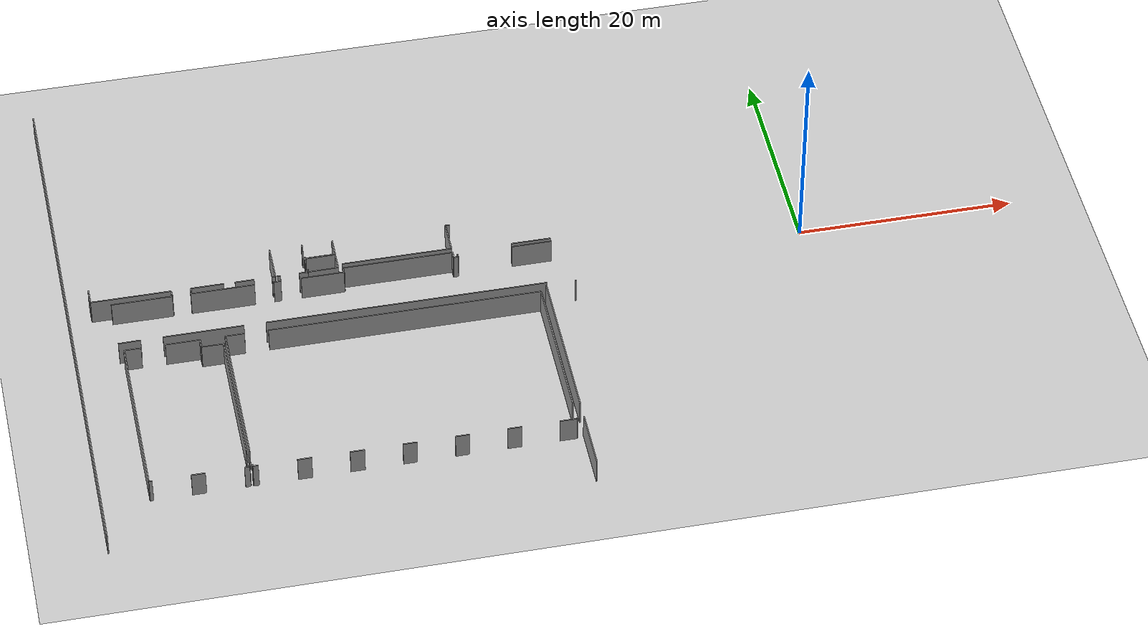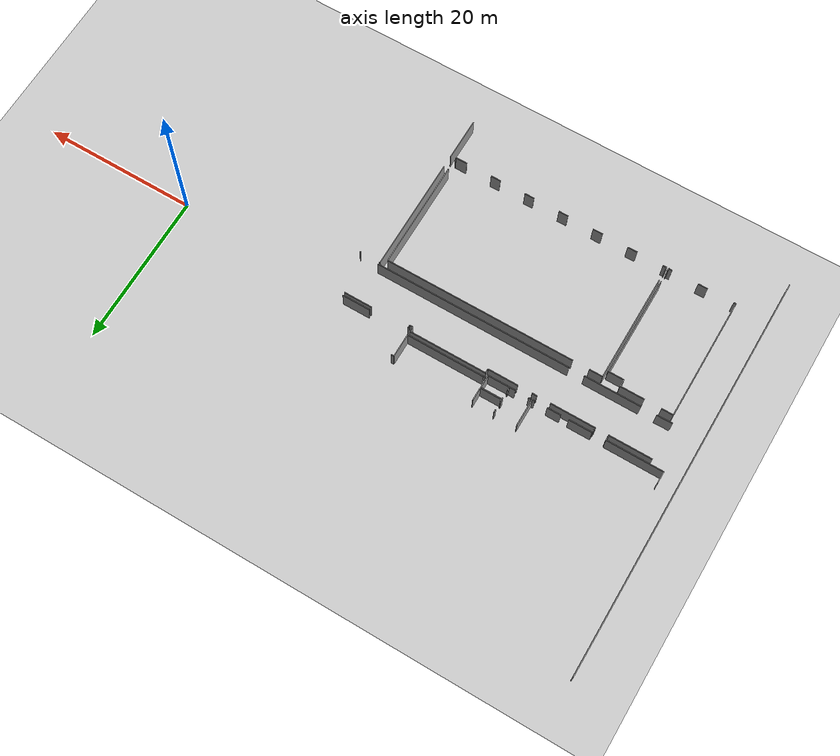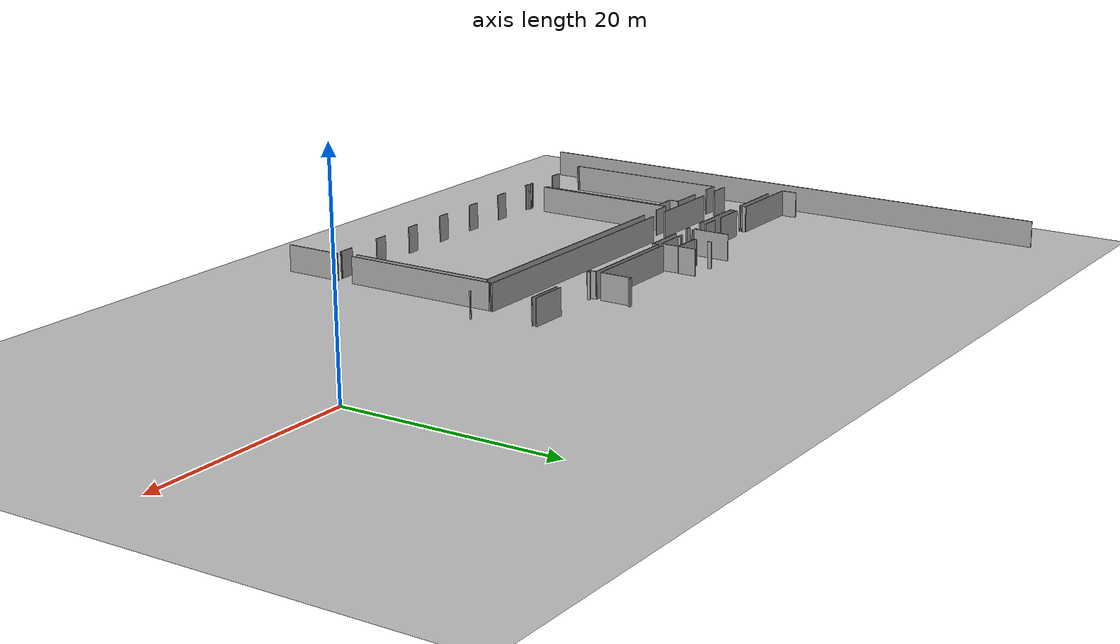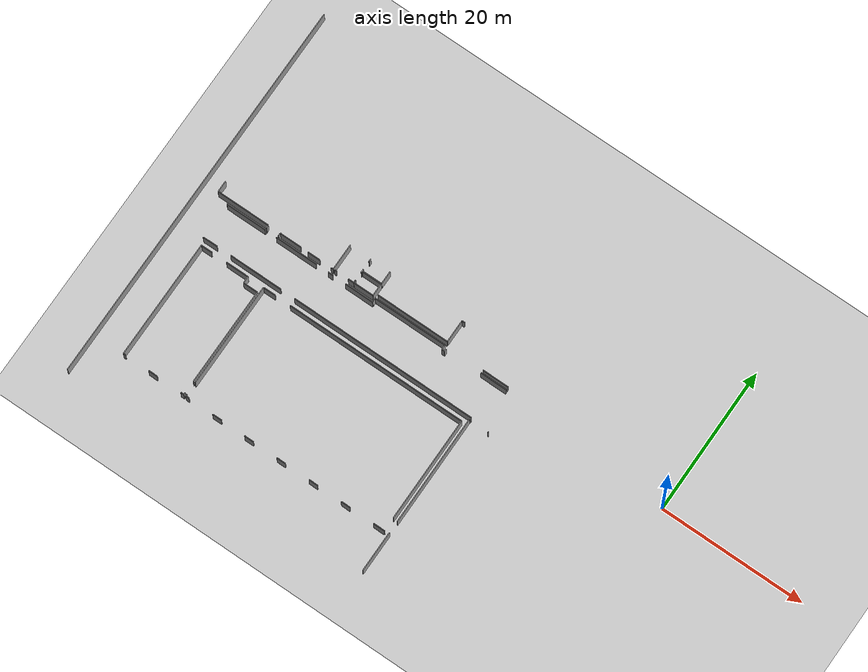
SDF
<sdf version="1.6">
 <world name="default">
  <model name="ground_plane">
   <static>1</static>
   <link name="link">
    <collision name="collision">
     <geometry><plane><normal>0 0 1</normal><size>100 100</size></plane></geometry>
     <surface><friction><ode><mu>100</mu><mu2>50</mu2></ode></friction></surface>
    </collision>
    <visual name="visual">
     <cast_shadows>0</cast_shadows>
     <geometry><plane><normal>0 0 1</normal><size>100 100</size></plane></geometry>
     <material>
      <script><uri>file://media/materials/scripts/gazebo.material</uri><name>Gazebo/Grey</name></script>
     </material>
    </visual>
   </link>
  </model>
  <model name="0510032192_A_40_1_103">
   <static>1</static>
   <link name="Wall_97">
    <collision name="Wall_97_Collision">
     <geometry><box><size>1.51347299684 0.1 2.5</size></box></geometry>
     <pose>0.756736498418 0 1.25 0 0 0</pose>
    </collision>
    <visual name="Wall_97_Visual">
     <pose>0.756736498418 0 1.25 0 0 0</pose>
     <geometry><box><size>1.51347299684 0.1 2.5</size></box></geometry>
     <material>
      <script><uri>file://media/materials/scripts/gazebo.material</uri><name>Gazebo/Grey</name></script>
      <ambient>1 1 1 1</ambient>
     </material>
    </visual>
    <pose>2.18019895062 -25.2887070751 0 0 0 1.57079632679</pose>
   </link>
   <link name="Wall_102">
    <collision name="Wall_102_Collision">
     <geometry><box><size>2.99315233824 0.1 2.5</size></box></geometry>
     <pose>1.49657616912 0 1.25 0 0 0</pose>
    </collision>
    <visual name="Wall_102_Visual">
     <pose>1.49657616912 0 1.25 0 0 0</pose>
     <geometry><box><size>2.99315233824 0.1 2.5</size></box></geometry>
     <material>
      <script><uri>file://media/materials/scripts/gazebo.material</uri><name>Gazebo/Grey</name></script>
      <ambient>1 1 1 1</ambient>
     </material>
    </visual>
    <pose>14.2558408395 -25.2934076963 0 0 0 3.14159265359</pose>
   </link>
   <link name="Wall_103">
    <collision name="Wall_103_Collision">
     <geometry><box><size>0.407429522442 0.1 2.5</size></box></geometry>
     <pose>0.203714761221 0 1.25 0 0 0</pose>
    </collision>
    <visual name="Wall_103_Visual">
     <pose>0.203714761221 0 1.25 0 0 0</pose>
     <geometry><box><size>0.407429522442 0.1 2.5</size></box></geometry>
     <material>
      <script><uri>file://media/materials/scripts/gazebo.material</uri><name>Gazebo/Grey</name></script>
      <ambient>1 1 1 1</ambient>
     </material>
    </visual>
    <pose>11.2626885013 -25.2934076963 0 0 0 -1.57079632679</pose>
   </link>
   <link name="Wall_104">
    <collision name="Wall_104_Collision">
     <geometry><box><size>0.0768615095346 0.1 2.5</size></box></geometry>
     <pose>0.0384307547673 0 1.25 0 0 0</pose>
    </collision>
    <visual name="Wall_104_Visual">
     <pose>0.0384307547673 0 1.25 0 0 0</pose>
     <geometry><box><size>0.0768615095346 0.1 2.5</size></box></geometry>
     <material>
      <script><uri>file://media/materials/scripts/gazebo.material</uri><name>Gazebo/Grey</name></script>
      <ambient>1 1 1 1</ambient>
     </material>
    </visual>
    <pose>11.2626885013 -25.7008372188 0 0 0 3.14159265359</pose>
   </link>
   <link name="Wall_105">
    <collision name="Wall_105_Collision">
     <geometry><box><size>0.0706363624814 0.1 2.5</size></box></geometry>
     <pose>0.0353181812407 0 1.25 0 0 0</pose>
    </collision>
    <visual name="Wall_105_Visual">
     <pose>0.0353181812407 0 1.25 0 0 0</pose>
     <geometry><box><size>0.0706363624814 0.1 2.5</size></box></geometry>
     <material>
      <script><uri>file://media/materials/scripts/gazebo.material</uri><name>Gazebo/Grey</name></script>
      <ambient>1 1 1 1</ambient>
     </material>
    </visual>
    <pose>9.55852273449 -25.7008372188 0 0 0 3.14159265359</pose>
   </link>
   <link name="Wall_106">
    <collision name="Wall_106_Collision">
     <geometry><box><size>0.406667259538 0.1 2.5</size></box></geometry>
     <pose>0.203333629769 0 1.25 0 0 0</pose>
    </collision>
    <visual name="Wall_106_Visual">
     <pose>0.203333629769 0 1.25 0 0 0</pose>
     <geometry><box><size>0.406667259538 0.1 2.5</size></box></geometry>
     <material>
      <script><uri>file://media/materials/scripts/gazebo.material</uri><name>Gazebo/Grey</name></script>
      <ambient>1 1 1 1</ambient>
     </material>
    </visual>
    <pose>9.48788637201 -25.7008372188 0 0 0 1.57079632679</pose>
   </link>
   <link name="Wall_107">
    <collision name="Wall_107_Collision">
     <geometry><box><size>7.30768946329 0.1 2.5</size></box></geometry>
     <pose>3.65384473164 0 1.25 0 0 0</pose>
    </collision>
    <visual name="Wall_107_Visual">
     <pose>3.65384473164 0 1.25 0 0 0</pose>
     <geometry><box><size>7.30768946329 0.1 2.5</size></box></geometry>
     <material>
      <script><uri>file://media/materials/scripts/gazebo.material</uri><name>Gazebo/Grey</name></script>
      <ambient>1 1 1 1</ambient>
     </material>
    </visual>
    <pose>9.48788637201 -25.2941699592 0 0 0 3.14084510066</pose>
   </link>
   <link name="Wall_136">
    <collision name="Wall_136_Collision">
     <geometry><box><size>10.0649193907 0.1 2.5</size></box></geometry>
     <pose>5.03245969535 0 1.25 0 0 0</pose>
    </collision>
    <visual name="Wall_136_Visual">
     <pose>5.03245969535 0 1.25 0 0 0</pose>
     <geometry><box><size>10.0649193907 0.1 2.5</size></box></geometry>
     <material>
      <script><uri>file://media/materials/scripts/gazebo.material</uri><name>Gazebo/Grey</name></script>
      <ambient>1 1 1 1</ambient>
     </material>
    </visual>
    <pose>25.1807198303 -24.8798800706 0 0 0 0.0</pose>
   </link>
   <link name="Wall_137">
    <collision name="Wall_137_Collision">
     <geometry><box><size>3.08309936097 0.1 2.5</size></box></geometry>
     <pose>1.54154968048 0 1.25 0 0 0</pose>
    </collision>
    <visual name="Wall_137_Visual">
     <pose>1.54154968048 0 1.25 0 0 0</pose>
     <geometry><box><size>3.08309936097 0.1 2.5</size></box></geometry>
     <material>
      <script><uri>file://media/materials/scripts/gazebo.material</uri><name>Gazebo/Grey</name></script>
      <ambient>1 1 1 1</ambient>
     </material>
    </visual>
    <pose>35.245639221 -24.8798800706 0 0 0 1.57079632679</pose>
   </link>
   <link name="Wall_138">
    <collision name="Wall_138_Collision">
     <geometry><box><size>0.384307547673 0.1 2.5</size></box></geometry>
     <pose>0.192153773837 0 1.25 0 0 0</pose>
    </collision>
    <visual name="Wall_138_Visual">
     <pose>0.192153773837 0 1.25 0 0 0</pose>
     <geometry><box><size>0.384307547673 0.1 2.5</size></box></geometry>
     <material>
      <script><uri>file://media/materials/scripts/gazebo.material</uri><name>Gazebo/Grey</name></script>
      <ambient>1 1 1 1</ambient>
     </material>
    </visual>
    <pose>35.245639221 -21.7967807097 0 0 0 0.0</pose>
   </link>
   <link name="Wall_140">
    <collision name="Wall_140_Collision">
     <geometry><box><size>3.61198277286 0.1 2.5</size></box></geometry>
     <pose>1.80599138643 0 1.25 0 0 0</pose>
    </collision>
    <visual name="Wall_140_Visual">
     <pose>1.80599138643 0 1.25 0 0 0</pose>
     <geometry><box><size>3.61198277286 0.1 2.5</size></box></geometry>
     <material>
      <script><uri>file://media/materials/scripts/gazebo.material</uri><name>Gazebo/Grey</name></script>
      <ambient>1 1 1 1</ambient>
     </material>
    </visual>
    <pose>40.7116994651 -25.3327912797 0 0 0 0.0</pose>
   </link>
   <link name="Wall_366">
    <collision name="Wall_366_Collision">
     <geometry><box><size>5.58484621346 0.1 2.5</size></box></geometry>
     <pose>2.79242310673 0 1.25 0 0 0</pose>
    </collision>
    <visual name="Wall_366_Visual">
     <pose>2.79242310673 0 1.25 0 0 0</pose>
     <geometry><box><size>5.58484621346 0.1 2.5</size></box></geometry>
     <material>
      <script><uri>file://media/materials/scripts/gazebo.material</uri><name>Gazebo/Grey</name></script>
      <ambient>1 1 1 1</ambient>
     </material>
    </visual>
    <pose>3.94775958228 -25.9514946705 0 0 0 0.0</pose>
   </link>
   <link name="Wall_367">
    <collision name="Wall_367_Collision">
     <geometry><box><size>5.81466847916 0.1 2.5</size></box></geometry>
     <pose>2.90733423958 0 1.25 0 0 0</pose>
    </collision>
    <visual name="Wall_367_Visual">
     <pose>2.90733423958 0 1.25 0 0 0</pose>
     <geometry><box><size>5.81466847916 0.1 2.5</size></box></geometry>
     <material>
      <script><uri>file://media/materials/scripts/gazebo.material</uri><name>Gazebo/Grey</name></script>
      <ambient>1 1 1 1</ambient>
     </material>
    </visual>
    <pose>11.1506358543 -25.9514946705 0 0 0 0.0</pose>
   </link>
   <link name="Wall_368">
    <collision name="Wall_368_Collision">
     <geometry><box><size>0.605109702336 0.1 2.5</size></box></geometry>
     <pose>0.302554851168 0 1.25 0 0 0</pose>
    </collision>
    <visual name="Wall_368_Visual">
     <pose>0.302554851168 0 1.25 0 0 0</pose>
     <geometry><box><size>0.605109702336 0.1 2.5</size></box></geometry>
     <material>
      <script><uri>file://media/materials/scripts/gazebo.material</uri><name>Gazebo/Grey</name></script>
      <ambient>1 1 1 1</ambient>
     </material>
    </visual>
    <pose>18.7516674501 -25.9514946705 0 0 0 0.0</pose>
   </link>
   <link name="Wall_369">
    <collision name="Wall_369_Collision">
     <geometry><box><size>3.91523636502 0.1 2.5</size></box></geometry>
     <pose>1.95761818251 0 1.25 0 0 0</pose>
    </collision>
    <visual name="Wall_369_Visual">
     <pose>1.95761818251 0 1.25 0 0 0</pose>
     <geometry><box><size>3.91523636502 0.1 2.5</size></box></geometry>
     <material>
      <script><uri>file://media/materials/scripts/gazebo.material</uri><name>Gazebo/Grey</name></script>
      <ambient>1 1 1 1</ambient>
     </material>
    </visual>
    <pose>21.2408369647 -25.9514946705 0 0 0 0.0</pose>
   </link>
   <link name="Wall_370">
    <collision name="Wall_370_Collision">
     <geometry><box><size>0.563439330225 0.1 2.5</size></box></geometry>
     <pose>0.281719665112 0 1.25 0 0 0</pose>
    </collision>
    <visual name="Wall_370_Visual">
     <pose>0.281719665112 0 1.25 0 0 0</pose>
     <geometry><box><size>0.563439330225 0.1 2.5</size></box></geometry>
     <material>
      <script><uri>file://media/materials/scripts/gazebo.material</uri><name>Gazebo/Grey</name></script>
      <ambient>1 1 1 1</ambient>
     </material>
    </visual>
    <pose>25.1560733297 -25.9514946705 0 0 0 1.57079632679</pose>
   </link>
   <link name="Wall_371">
    <collision name="Wall_371_Collision">
     <geometry><box><size>10.0886765846 0.1 2.5</size></box></geometry>
     <pose>5.04433829228 0 1.25 0 0 0</pose>
    </collision>
    <visual name="Wall_371_Visual">
     <pose>5.04433829228 0 1.25 0 0 0</pose>
     <geometry><box><size>10.0886765846 0.1 2.5</size></box></geometry>
     <material>
      <script><uri>file://media/materials/scripts/gazebo.material</uri><name>Gazebo/Grey</name></script>
      <ambient>1 1 1 1</ambient>
     </material>
    </visual>
    <pose>25.1560733297 -25.3880553403 0 0 0 0.0</pose>
   </link>
   <link name="Wall_372">
    <collision name="Wall_372_Collision">
     <geometry><box><size>0.651861827144 0.1 2.5</size></box></geometry>
     <pose>0.325930913572 0 1.25 0 0 0</pose>
    </collision>
    <visual name="Wall_372_Visual">
     <pose>0.325930913572 0 1.25 0 0 0</pose>
     <geometry><box><size>0.651861827144 0.1 2.5</size></box></geometry>
     <material>
      <script><uri>file://media/materials/scripts/gazebo.material</uri><name>Gazebo/Grey</name></script>
      <ambient>1 1 1 1</ambient>
     </material>
    </visual>
    <pose>35.2447499142 -25.3880553403 0 0 0 -1.57079632679</pose>
   </link>
   <link name="Wall_373">
    <collision name="Wall_373_Collision">
     <geometry><box><size>0.408699960616 0.1 2.5</size></box></geometry>
     <pose>0.204349980308 0 1.25 0 0 0</pose>
    </collision>
    <visual name="Wall_373_Visual">
     <pose>0.204349980308 0 1.25 0 0 0</pose>
     <geometry><box><size>0.408699960616 0.1 2.5</size></box></geometry>
     <material>
      <script><uri>file://media/materials/scripts/gazebo.material</uri><name>Gazebo/Grey</name></script>
      <ambient>1 1 1 1</ambient>
     </material>
    </visual>
    <pose>35.2447499142 -26.0399171674 0 0 0 0.0</pose>
   </link>
   <link name="Wall_374">
    <collision name="Wall_374_Collision">
     <geometry><box><size>0.320404507515 0.1 2.5</size></box></geometry>
     <pose>0.160202253757 0 1.25 0 0 0</pose>
    </collision>
    <visual name="Wall_374_Visual">
     <pose>0.160202253757 0 1.25 0 0 0</pose>
     <geometry><box><size>0.320404507515 0.1 2.5</size></box></geometry>
     <material>
      <script><uri>file://media/materials/scripts/gazebo.material</uri><name>Gazebo/Grey</name></script>
      <ambient>1 1 1 1</ambient>
     </material>
    </visual>
    <pose>35.6534498749 -26.0399171674 0 0 0 1.57079632679</pose>
   </link>
   <link name="Wall_375">
    <collision name="Wall_375_Collision">
     <geometry><box><size>3.633453178 0.1 2.5</size></box></geometry>
     <pose>1.816726589 0 1.25 0 0 0</pose>
    </collision>
    <visual name="Wall_375_Visual">
     <pose>1.816726589 0 1.25 0 0 0</pose>
     <geometry><box><size>3.633453178 0.1 2.5</size></box></geometry>
     <material>
      <script><uri>file://media/materials/scripts/gazebo.material</uri><name>Gazebo/Grey</name></script>
      <ambient>1 1 1 1</ambient>
     </material>
    </visual>
    <pose>40.6982328205 -25.7195126599 0 0 0 0.0</pose>
   </link>
   <link name="Wall_380">
    <collision name="Wall_380_Collision">
     <geometry><box><size>5.51852934077 0.1 2.5</size></box></geometry>
     <pose>2.75926467038 0 1.25 0 0 0</pose>
    </collision>
    <visual name="Wall_380_Visual">
     <pose>2.75926467038 0 1.25 0 0 0</pose>
     <geometry><box><size>5.51852934077 0.1 2.5</size></box></geometry>
     <material>
      <script><uri>file://media/materials/scripts/gazebo.material</uri><name>Gazebo/Grey</name></script>
      <ambient>1 1 1 1</ambient>
     </material>
    </visual>
    <pose>3.96986520651 -25.9570845985 0 0 0 0.0</pose>
   </link>
   <link name="Wall_381">
    <collision name="Wall_381_Collision">
     <geometry><box><size>5.81149238372 0.1 2.5</size></box></geometry>
     <pose>2.90574619186 0 1.25 0 0 0</pose>
    </collision>
    <visual name="Wall_381_Visual">
     <pose>2.90574619186 0 1.25 0 0 0</pose>
     <geometry><box><size>5.81149238372 0.1 2.5</size></box></geometry>
     <material>
      <script><uri>file://media/materials/scripts/gazebo.material</uri><name>Gazebo/Grey</name></script>
      <ambient>1 1 1 1</ambient>
     </material>
    </visual>
    <pose>11.1616886664 -25.9570845985 0 0 0 0.0</pose>
   </link>
   <link name="Wall_382">
    <collision name="Wall_382_Collision">
     <geometry><box><size>0.659103324737 0.1 2.5</size></box></geometry>
     <pose>0.329551662368 0 1.25 0 0 0</pose>
    </collision>
    <visual name="Wall_382_Visual">
     <pose>0.329551662368 0 1.25 0 0 0</pose>
     <geometry><box><size>0.659103324737 0.1 2.5</size></box></geometry>
     <material>
      <script><uri>file://media/materials/scripts/gazebo.material</uri><name>Gazebo/Grey</name></script>
      <ambient>1 1 1 1</ambient>
     </material>
    </visual>
    <pose>18.7229555474 -25.9570845985 0 0 0 0.0</pose>
   </link>
   <link name="Wall_383">
    <collision name="Wall_383_Collision">
     <geometry><box><size>3.92971936021 0.1 2.5</size></box></geometry>
     <pose>1.9648596801 0 1.25 0 0 0</pose>
    </collision>
    <visual name="Wall_383_Visual">
     <pose>1.9648596801 0 1.25 0 0 0</pose>
     <geometry><box><size>3.92971936021 0.1 2.5</size></box></geometry>
     <material>
      <script><uri>file://media/materials/scripts/gazebo.material</uri><name>Gazebo/Grey</name></script>
      <ambient>1 1 1 1</ambient>
     </material>
    </visual>
    <pose>21.2335954671 -25.9570845985 0 0 0 0.0</pose>
   </link>
   <link name="Wall_384">
    <collision name="Wall_384_Collision">
     <geometry><box><size>0.566488381843 0.1 2.5</size></box></geometry>
     <pose>0.283244190921 0 1.25 0 0 0</pose>
    </collision>
    <visual name="Wall_384_Visual">
     <pose>0.283244190921 0 1.25 0 0 0</pose>
     <geometry><box><size>0.566488381843 0.1 2.5</size></box></geometry>
     <material>
      <script><uri>file://media/materials/scripts/gazebo.material</uri><name>Gazebo/Grey</name></script>
      <ambient>1 1 1 1</ambient>
     </material>
    </visual>
    <pose>25.1633148273 -25.9570845985 0 0 0 1.57079632679</pose>
   </link>
   <link name="Wall_385">
    <collision name="Wall_385_Collision">
     <geometry><box><size>10.0630137334 0.1 2.5</size></box></geometry>
     <pose>5.03150686672 0 1.25 0 0 0</pose>
    </collision>
    <visual name="Wall_385_Visual">
     <pose>5.03150686672 0 1.25 0 0 0</pose>
     <geometry><box><size>10.0630137334 0.1 2.5</size></box></geometry>
     <material>
      <script><uri>file://media/materials/scripts/gazebo.material</uri><name>Gazebo/Grey</name></script>
      <ambient>1 1 1 1</ambient>
     </material>
    </visual>
    <pose>25.1633148273 -25.3905962166 0 0 0 0.0</pose>
   </link>
   <link name="Wall_386">
    <collision name="Wall_386_Collision">
     <geometry><box><size>0.645255548639 0.1 2.5</size></box></geometry>
     <pose>0.322627774319 0 1.25 0 0 0</pose>
    </collision>
    <visual name="Wall_386_Visual">
     <pose>0.322627774319 0 1.25 0 0 0</pose>
     <geometry><box><size>0.645255548639 0.1 2.5</size></box></geometry>
     <material>
      <script><uri>file://media/materials/scripts/gazebo.material</uri><name>Gazebo/Grey</name></script>
      <ambient>1 1 1 1</ambient>
     </material>
    </visual>
    <pose>35.2263285607 -25.3905962166 0 0 0 -1.57079632679</pose>
   </link>
   <link name="Wall_387">
    <collision name="Wall_387_Collision">
     <geometry><box><size>0.428391752315 0.1 2.5</size></box></geometry>
     <pose>0.214195876158 0 1.25 0 0 0</pose>
    </collision>
    <visual name="Wall_387_Visual">
     <pose>0.214195876158 0 1.25 0 0 0</pose>
     <geometry><box><size>0.428391752315 0.1 2.5</size></box></geometry>
     <material>
      <script><uri>file://media/materials/scripts/gazebo.material</uri><name>Gazebo/Grey</name></script>
      <ambient>1 1 1 1</ambient>
     </material>
    </visual>
    <pose>35.2263285607 -26.0358517653 0 0 0 0.0</pose>
   </link>
   <link name="Wall_388">
    <collision name="Wall_388_Collision">
     <geometry><box><size>0.313035966105 0.1 2.5</size></box></geometry>
     <pose>0.156517983052 0 1.25 0 0 0</pose>
    </collision>
    <visual name="Wall_388_Visual">
     <pose>0.156517983052 0 1.25 0 0 0</pose>
     <geometry><box><size>0.313035966105 0.1 2.5</size></box></geometry>
     <material>
      <script><uri>file://media/materials/scripts/gazebo.material</uri><name>Gazebo/Grey</name></script>
      <ambient>1 1 1 1</ambient>
     </material>
    </visual>
    <pose>35.654720313 -26.0358517653 0 0 0 1.57079632679</pose>
   </link>
   <link name="Wall_389">
    <collision name="Wall_389_Collision">
     <geometry><box><size>3.65073113717 0.1 2.5</size></box></geometry>
     <pose>1.82536556858 0 1.25 0 0 0</pose>
    </collision>
    <visual name="Wall_389_Visual">
     <pose>1.82536556858 0 1.25 0 0 0</pose>
     <geometry><box><size>3.65073113717 0.1 2.5</size></box></geometry>
     <material>
      <script><uri>file://media/materials/scripts/gazebo.material</uri><name>Gazebo/Grey</name></script>
      <ambient>1 1 1 1</ambient>
     </material>
    </visual>
    <pose>40.6847661759 -25.7228157992 0 0 0 0.0</pose>
   </link>
   <link name="Wall_394">
    <collision name="Wall_394_Collision">
     <geometry><box><size>25.6303279001 0.1 2.5</size></box></geometry>
     <pose>12.81516395 0 1.25 0 0 0</pose>
    </collision>
    <visual name="Wall_394_Visual">
     <pose>12.81516395 0 1.25 0 0 0</pose>
     <geometry><box><size>25.6303279001 0.1 2.5</size></box></geometry>
     <material>
      <script><uri>file://media/materials/scripts/gazebo.material</uri><name>Gazebo/Grey</name></script>
      <ambient>1 1 1 1</ambient>
     </material>
    </visual>
    <pose>42.88338648 -30.8891796781 0 0 0 3.14159265359</pose>
   </link>
   <link name="Wall_395">
    <collision name="Wall_395_Collision">
     <geometry><box><size>7.30501950123 0.1 2.5</size></box></geometry>
     <pose>3.65250975061 0 1.25 0 0 0</pose>
    </collision>
    <visual name="Wall_395_Visual">
     <pose>3.65250975061 0 1.25 0 0 0</pose>
     <geometry><box><size>7.30501950123 0.1 2.5</size></box></geometry>
     <material>
      <script><uri>file://media/materials/scripts/gazebo.material</uri><name>Gazebo/Grey</name></script>
      <ambient>1 1 1 1</ambient>
     </material>
    </visual>
    <pose>15.2640605745 -30.8891796781 0 0 0 3.14159265359</pose>
   </link>
   <link name="Wall_396">
    <collision name="Wall_396_Collision">
     <geometry><box><size>2.01811567243 0.1 2.5</size></box></geometry>
     <pose>1.00905783622 0 1.25 0 0 0</pose>
    </collision>
    <visual name="Wall_396_Visual">
     <pose>1.00905783622 0 1.25 0 0 0</pose>
     <geometry><box><size>2.01811567243 0.1 2.5</size></box></geometry>
     <material>
      <script><uri>file://media/materials/scripts/gazebo.material</uri><name>Gazebo/Grey</name></script>
      <ambient>1 1 1 1</ambient>
     </material>
    </visual>
    <pose>5.96559653424 -30.8891796781 0 0 0 -3.124972639</pose>
   </link>
   <link name="Wall_397">
    <collision name="Wall_397_Collision">
     <geometry><box><size>1.75422103083 0.1 2.5</size></box></geometry>
     <pose>0.877110515417 0 1.25 0 0 0</pose>
    </collision>
    <visual name="Wall_397_Visual">
     <pose>0.877110515417 0 1.25 0 0 0</pose>
     <geometry><box><size>1.75422103083 0.1 2.5</size></box></geometry>
     <material>
      <script><uri>file://media/materials/scripts/gazebo.material</uri><name>Gazebo/Grey</name></script>
      <ambient>1 1 1 1</ambient>
     </material>
    </visual>
    <pose>15.292899521 -25.3056039028 0 0 0 0.0</pose>
   </link>
   <link name="Wall_398">
    <collision name="Wall_398_Collision">
     <geometry><box><size>0.317355455897 0.1 2.5</size></box></geometry>
     <pose>0.158677727948 0 1.25 0 0 0</pose>
    </collision>
    <visual name="Wall_398_Visual">
     <pose>0.158677727948 0 1.25 0 0 0</pose>
     <geometry><box><size>0.317355455897 0.1 2.5</size></box></geometry>
     <material>
      <script><uri>file://media/materials/scripts/gazebo.material</uri><name>Gazebo/Grey</name></script>
      <ambient>1 1 1 1</ambient>
     </material>
    </visual>
    <pose>18.6676914868 -25.3056039028 0 0 0 0.0</pose>
   </link>
   <link name="Wall_399">
    <collision name="Wall_399_Collision">
     <geometry><box><size>3.55849732573 0.1 2.5</size></box></geometry>
     <pose>1.77924866286 0 1.25 0 0 0</pose>
    </collision>
    <visual name="Wall_399_Visual">
     <pose>1.77924866286 0 1.25 0 0 0</pose>
     <geometry><box><size>3.55849732573 0.1 2.5</size></box></geometry>
     <material>
      <script><uri>file://media/materials/scripts/gazebo.material</uri><name>Gazebo/Grey</name></script>
      <ambient>1 1 1 1</ambient>
     </material>
    </visual>
    <pose>18.9850469427 -25.3056039028 0 0 0 1.57079632679</pose>
   </link>
   <link name="Wall_402">
    <collision name="Wall_402_Collision">
     <geometry><box><size>0.299061146189 0.1 2.5</size></box></geometry>
     <pose>0.149530573095 0 1.25 0 0 0</pose>
    </collision>
    <visual name="Wall_402_Visual">
     <pose>0.149530573095 0 1.25 0 0 0</pose>
     <geometry><box><size>0.299061146189 0.1 2.5</size></box></geometry>
     <material>
      <script><uri>file://media/materials/scripts/gazebo.material</uri><name>Gazebo/Grey</name></script>
      <ambient>1 1 1 1</ambient>
     </material>
    </visual>
    <pose>19.1645598567 -25.2857850673 0 0 0 0.0</pose>
   </link>
   <link name="Wall_403">
    <collision name="Wall_403_Collision">
     <geometry><box><size>0.797581085716 0.1 2.5</size></box></geometry>
     <pose>0.398790542858 0 1.25 0 0 0</pose>
    </collision>
    <visual name="Wall_403_Visual">
     <pose>0.398790542858 0 1.25 0 0 0</pose>
     <geometry><box><size>0.797581085716 0.1 2.5</size></box></geometry>
     <material>
      <script><uri>file://media/materials/scripts/gazebo.material</uri><name>Gazebo/Grey</name></script>
      <ambient>1 1 1 1</ambient>
     </material>
    </visual>
    <pose>21.1682949449 -25.2857850673 0 0 0 0.0</pose>
   </link>
   <link name="Wall_404">
    <collision name="Wall_404_Collision">
     <geometry><box><size>0.361439660539 0.1 2.5</size></box></geometry>
     <pose>0.180719830269 0 1.25 0 0 0</pose>
    </collision>
    <visual name="Wall_404_Visual">
     <pose>0.180719830269 0 1.25 0 0 0</pose>
     <geometry><box><size>0.361439660539 0.1 2.5</size></box></geometry>
     <material>
      <script><uri>file://media/materials/scripts/gazebo.material</uri><name>Gazebo/Grey</name></script>
      <ambient>1 1 1 1</ambient>
     </material>
    </visual>
    <pose>21.9658760306 -25.2857850673 0 0 0 1.57079632679</pose>
   </link>
   <link name="Wall_405">
    <collision name="Wall_405_Collision">
     <geometry><box><size>0.42864583995 0.1 2.5</size></box></geometry>
     <pose>0.214322919975 0 1.25 0 0 0</pose>
    </collision>
    <visual name="Wall_405_Visual">
     <pose>0.214322919975 0 1.25 0 0 0</pose>
     <geometry><box><size>0.42864583995 0.1 2.5</size></box></geometry>
     <material>
      <script><uri>file://media/materials/scripts/gazebo.material</uri><name>Gazebo/Grey</name></script>
      <ambient>1 1 1 1</ambient>
     </material>
    </visual>
    <pose>21.9658760306 -23.7344530128 0 0 0 1.57079632679</pose>
   </link>
   <link name="Wall_406">
    <collision name="Wall_406_Collision">
     <geometry><box><size>0.378971707342 0.1 2.5</size></box></geometry>
     <pose>0.189485853671 0 1.25 0 0 0</pose>
    </collision>
    <visual name="Wall_406_Visual">
     <pose>0.189485853671 0 1.25 0 0 0</pose>
     <geometry><box><size>0.378971707342 0.1 2.5</size></box></geometry>
     <material>
      <script><uri>file://media/materials/scripts/gazebo.material</uri><name>Gazebo/Grey</name></script>
      <ambient>1 1 1 1</ambient>
     </material>
    </visual>
    <pose>21.9658760306 -22.1307789056 0 0 0 1.57079632679</pose>
   </link>
   <link name="Wall_409">
    <collision name="Wall_409_Collision">
     <geometry><box><size>2.75545335586 0.1 2.5</size></box></geometry>
     <pose>1.37772667793 0 1.25 0 0 0</pose>
    </collision>
    <visual name="Wall_409_Visual">
     <pose>1.37772667793 0 1.25 0 0 0</pose>
     <geometry><box><size>2.75545335586 0.1 2.5</size></box></geometry>
     <material>
      <script><uri>file://media/materials/scripts/gazebo.material</uri><name>Gazebo/Grey</name></script>
      <ambient>1 1 1 1</ambient>
     </material>
    </visual>
    <pose>22.0037350882 -23.5104747627 0 0 0 0.0</pose>
   </link>
   <link name="Wall_410">
    <collision name="Wall_410_Collision">
     <geometry><box><size>1.75879460826 0.1 2.5</size></box></geometry>
     <pose>0.87939730413 0 1.25 0 0 0</pose>
    </collision>
    <visual name="Wall_410_Visual">
     <pose>0.87939730413 0 1.25 0 0 0</pose>
     <geometry><box><size>1.75879460826 0.1 2.5</size></box></geometry>
     <material>
      <script><uri>file://media/materials/scripts/gazebo.material</uri><name>Gazebo/Grey</name></script>
      <ambient>1 1 1 1</ambient>
     </material>
    </visual>
    <pose>24.7591884441 -23.5104747627 0 0 0 1.57079632679</pose>
   </link>
   <link name="Wall_413">
    <collision name="Wall_413_Collision">
     <geometry><box><size>0.20060134288 0.1 2.5</size></box></geometry>
     <pose>0.10030067144 0 1.25 0 0 0</pose>
    </collision>
    <visual name="Wall_413_Visual">
     <pose>0.10030067144 0 1.25 0 0 0</pose>
     <geometry><box><size>0.20060134288 0.1 2.5</size></box></geometry>
     <material>
      <script><uri>file://media/materials/scripts/gazebo.material</uri><name>Gazebo/Grey</name></script>
      <ambient>1 1 1 1</ambient>
     </material>
    </visual>
    <pose>22.010849542 -23.3099996189 0 0 0 -1.6062693997</pose>
   </link>
   <link name="Wall_414">
    <collision name="Wall_414_Collision">
     <geometry><box><size>0.339588123944 0.1 2.5</size></box></geometry>
     <pose>0.169794061972 0 1.25 0 0 0</pose>
    </collision>
    <visual name="Wall_414_Visual">
     <pose>0.169794061972 0 1.25 0 0 0</pose>
     <geometry><box><size>0.339588123944 0.1 2.5</size></box></geometry>
     <material>
      <script><uri>file://media/materials/scripts/gazebo.material</uri><name>Gazebo/Grey</name></script>
      <ambient>1 1 1 1</ambient>
     </material>
    </visual>
    <pose>22.0000508175 -25.2873095931 0 0 0 1.57079632679</pose>
   </link>
   <link name="Wall_415">
    <collision name="Wall_415_Collision">
     <geometry><box><size>0.186246236327 0.1 2.5</size></box></geometry>
     <pose>0.0931231181635 0 1.25 0 0 0</pose>
    </collision>
    <visual name="Wall_415_Visual">
     <pose>0.0931231181635 0 1.25 0 0 0</pose>
     <geometry><box><size>0.186246236327 0.1 2.5</size></box></geometry>
     <material>
      <script><uri>file://media/materials/scripts/gazebo.material</uri><name>Gazebo/Grey</name></script>
      <ambient>1 1 1 1</ambient>
     </material>
    </visual>
    <pose>22.0000508175 -23.7493171395 0 0 0 1.57079632679</pose>
   </link>
   <link name="Wall_416">
    <collision name="Wall_416_Collision">
     <geometry><box><size>2.74071627304 0.1 2.5</size></box></geometry>
     <pose>1.37035813652 0 1.25 0 0 0</pose>
    </collision>
    <visual name="Wall_416_Visual">
     <pose>1.37035813652 0 1.25 0 0 0</pose>
     <geometry><box><size>2.74071627304 0.1 2.5</size></box></geometry>
     <material>
      <script><uri>file://media/materials/scripts/gazebo.material</uri><name>Gazebo/Grey</name></script>
      <ambient>1 1 1 1</ambient>
     </material>
    </visual>
    <pose>22.0000508175 -23.5630709032 0 0 0 0.0</pose>
   </link>
   <link name="Wall_417">
    <collision name="Wall_417_Collision">
     <geometry><box><size>1.70505507349 0.1 2.5</size></box></geometry>
     <pose>0.852527536747 0 1.25 0 0 0</pose>
    </collision>
    <visual name="Wall_417_Visual">
     <pose>0.852527536747 0 1.25 0 0 0</pose>
     <geometry><box><size>1.70505507349 0.1 2.5</size></box></geometry>
     <material>
      <script><uri>file://media/materials/scripts/gazebo.material</uri><name>Gazebo/Grey</name></script>
      <ambient>1 1 1 1</ambient>
     </material>
    </visual>
    <pose>24.7407670906 -23.5630709032 0 0 0 -1.57079632679</pose>
   </link>
   <link name="Wall_418">
    <collision name="Wall_418_Collision">
     <geometry><box><size>2.74078340999 0.1 2.5</size></box></geometry>
     <pose>1.37039170499 0 1.25 0 0 0</pose>
    </collision>
    <visual name="Wall_418_Visual">
     <pose>1.37039170499 0 1.25 0 0 0</pose>
     <geometry><box><size>2.74078340999 0.1 2.5</size></box></geometry>
     <material>
      <script><uri>file://media/materials/scripts/gazebo.material</uri><name>Gazebo/Grey</name></script>
      <ambient>1 1 1 1</ambient>
     </material>
    </visual>
    <pose>24.7407670906 -25.2681259766 0 0 0 -3.13459327779</pose>
   </link>
   <link name="Wall_419">
    <collision name="Wall_419_Collision">
     <geometry><box><size>16.0928944393 0.1 2.5</size></box></geometry>
     <pose>8.04644721965 0 1.25 0 0 0</pose>
    </collision>
    <visual name="Wall_419_Visual">
     <pose>8.04644721965 0 1.25 0 0 0</pose>
     <geometry><box><size>16.0928944393 0.1 2.5</size></box></geometry>
     <material>
      <script><uri>file://media/materials/scripts/gazebo.material</uri><name>Gazebo/Grey</name></script>
      <ambient>1 1 1 1</ambient>
     </material>
    </visual>
    <pose>4.35099665875 -47.9554838464 0 0 0 1.57079632679</pose>
   </link>
   <link name="Wall_420">
    <collision name="Wall_420_Collision">
     <geometry><box><size>1.5052151487 0.1 2.5</size></box></geometry>
     <pose>0.752607574352 0 1.25 0 0 0</pose>
    </collision>
    <visual name="Wall_420_Visual">
     <pose>0.752607574352 0 1.25 0 0 0</pose>
     <geometry><box><size>1.5052151487 0.1 2.5</size></box></geometry>
     <material>
      <script><uri>file://media/materials/scripts/gazebo.material</uri><name>Gazebo/Grey</name></script>
      <ambient>1 1 1 1</ambient>
     </material>
    </visual>
    <pose>4.35099665875 -31.8625894071 0 0 0 0.0</pose>
   </link>
   <link name="Wall_421">
    <collision name="Wall_421_Collision">
     <geometry><box><size>3.11867162985 0.1 2.5</size></box></geometry>
     <pose>1.55933581492 0 1.25 0 0 0</pose>
    </collision>
    <visual name="Wall_421_Visual">
     <pose>1.55933581492 0 1.25 0 0 0</pose>
     <geometry><box><size>3.11867162985 0.1 2.5</size></box></geometry>
     <material>
      <script><uri>file://media/materials/scripts/gazebo.material</uri><name>Gazebo/Grey</name></script>
      <ambient>1 1 1 1</ambient>
     </material>
    </visual>
    <pose>8.03094787392 -31.8625894071 0 0 0 0.0</pose>
   </link>
   <link name="Wall_422">
    <collision name="Wall_422_Collision">
     <geometry><box><size>0.91916201898 0.1 2.5</size></box></geometry>
     <pose>0.45958100949 0 1.25 0 0 0</pose>
    </collision>
    <visual name="Wall_422_Visual">
     <pose>0.45958100949 0 1.25 0 0 0</pose>
     <geometry><box><size>0.91916201898 0.1 2.5</size></box></geometry>
     <material>
      <script><uri>file://media/materials/scripts/gazebo.material</uri><name>Gazebo/Grey</name></script>
      <ambient>1 1 1 1</ambient>
     </material>
    </visual>
    <pose>11.1496195038 -31.8625894071 0 0 0 -1.57079632679</pose>
   </link>
   <link name="Wall_423">
    <collision name="Wall_423_Collision">
     <geometry><box><size>2.01313633072 0.1 2.5</size></box></geometry>
     <pose>1.00656816536 0 1.25 0 0 0</pose>
    </collision>
    <visual name="Wall_423_Visual">
     <pose>1.00656816536 0 1.25 0 0 0</pose>
     <geometry><box><size>2.01313633072 0.1 2.5</size></box></geometry>
     <material>
      <script><uri>file://media/materials/scripts/gazebo.material</uri><name>Gazebo/Grey</name></script>
      <ambient>1 1 1 1</ambient>
     </material>
    </visual>
    <pose>11.1496195038 -32.7817514261 0 0 0 0.0</pose>
   </link>
   <link name="Wall_424">
    <collision name="Wall_424_Collision">
     <geometry><box><size>13.2596902672 0.1 2.5</size></box></geometry>
     <pose>6.62984513359 0 1.25 0 0 0</pose>
    </collision>
    <visual name="Wall_424_Visual">
     <pose>6.62984513359 0 1.25 0 0 0</pose>
     <geometry><box><size>13.2596902672 0.1 2.5</size></box></geometry>
     <material>
      <script><uri>file://media/materials/scripts/gazebo.material</uri><name>Gazebo/Grey</name></script>
      <ambient>1 1 1 1</ambient>
     </material>
    </visual>
    <pose>13.1627558345 -32.7817514261 0 0 0 -1.57079632679</pose>
   </link>
   <link name="Wall_425">
    <collision name="Wall_425_Collision">
     <geometry><box><size>0.254087634825 0.1 2.5</size></box></geometry>
     <pose>0.127043817413 0 1.25 0 0 0</pose>
    </collision>
    <visual name="Wall_425_Visual">
     <pose>0.127043817413 0 1.25 0 0 0</pose>
     <geometry><box><size>0.254087634825 0.1 2.5</size></box></geometry>
     <material>
      <script><uri>file://media/materials/scripts/gazebo.material</uri><name>Gazebo/Grey</name></script>
      <ambient>1 1 1 1</ambient>
     </material>
    </visual>
    <pose>13.1627558345 -47.7035559564 0 0 0 -1.57079632679</pose>
   </link>
   <link name="Wall_426">
    <collision name="Wall_426_Collision">
     <geometry><box><size>0.459390443764 0.1 2.5</size></box></geometry>
     <pose>0.229695221882 0 1.25 0 0 0</pose>
    </collision>
    <visual name="Wall_426_Visual">
     <pose>0.229695221882 0 1.25 0 0 0</pose>
     <geometry><box><size>0.459390443764 0.1 2.5</size></box></geometry>
     <material>
      <script><uri>file://media/materials/scripts/gazebo.material</uri><name>Gazebo/Grey</name></script>
      <ambient>1 1 1 1</ambient>
     </material>
    </visual>
    <pose>13.1627558345 -47.9576435913 0 0 0 3.14159265359</pose>
   </link>
   <link name="Wall_427">
    <collision name="Wall_427_Collision">
     <geometry><box><size>1.25061933861 0.1 2.5</size></box></geometry>
     <pose>0.625309669305 0 1.25 0 0 0</pose>
    </collision>
    <visual name="Wall_427_Visual">
     <pose>0.625309669305 0 1.25 0 0 0</pose>
     <geometry><box><size>1.25061933861 0.1 2.5</size></box></geometry>
     <material>
      <script><uri>file://media/materials/scripts/gazebo.material</uri><name>Gazebo/Grey</name></script>
      <ambient>1 1 1 1</ambient>
     </material>
    </visual>
    <pose>9.28626783378 -47.9576435913 0 0 0 3.14159265359</pose>
   </link>
   <link name="Wall_428">
    <collision name="Wall_428_Collision">
     <geometry><box><size>0.29284396338 0.1 2.5</size></box></geometry>
     <pose>0.14642198169 0 1.25 0 0 0</pose>
    </collision>
    <visual name="Wall_428_Visual">
     <pose>0.14642198169 0 1.25 0 0 0</pose>
     <geometry><box><size>0.29284396338 0.1 2.5</size></box></geometry>
     <material>
      <script><uri>file://media/materials/scripts/gazebo.material</uri><name>Gazebo/Grey</name></script>
      <ambient>1 1 1 1</ambient>
     </material>
    </visual>
    <pose>4.64383265788 -47.9576435913 0 0 0 3.13421751616</pose>
   </link>
   <link name="Wall_429">
    <collision name="Wall_429_Collision">
     <geometry><box><size>0.217117883958 0.1 2.5</size></box></geometry>
     <pose>0.108558941979 0 1.25 0 0 0</pose>
    </collision>
    <visual name="Wall_429_Visual">
     <pose>0.108558941979 0 1.25 0 0 0</pose>
     <geometry><box><size>0.217117883958 0.1 2.5</size></box></geometry>
     <material>
      <script><uri>file://media/materials/scripts/gazebo.material</uri><name>Gazebo/Grey</name></script>
      <ambient>1 1 1 1</ambient>
     </material>
    </visual>
    <pose>13.4301830701 -47.9514184442 0 0 0 1.57079632679</pose>
   </link>
   <link name="Wall_430">
    <collision name="Wall_430_Collision">
     <geometry><box><size>14.1702133066 0.1 2.5</size></box></geometry>
     <pose>7.08510665328 0 1.25 0 0 0</pose>
    </collision>
    <visual name="Wall_430_Visual">
     <pose>7.08510665328 0 1.25 0 0 0</pose>
     <geometry><box><size>14.1702133066 0.1 2.5</size></box></geometry>
     <material>
      <script><uri>file://media/materials/scripts/gazebo.material</uri><name>Gazebo/Grey</name></script>
      <ambient>1 1 1 1</ambient>
     </material>
    </visual>
    <pose>13.4301830701 -46.0498265852 0 0 0 1.57079632679</pose>
   </link>
   <link name="Wall_431">
    <collision name="Wall_431_Collision">
     <geometry><box><size>1.72068146304 0.1 2.5</size></box></geometry>
     <pose>0.860340731518 0 1.25 0 0 0</pose>
    </collision>
    <visual name="Wall_431_Visual">
     <pose>0.860340731518 0 1.25 0 0 0</pose>
     <geometry><box><size>1.72068146304 0.1 2.5</size></box></geometry>
     <material>
      <script><uri>file://media/materials/scripts/gazebo.material</uri><name>Gazebo/Grey</name></script>
      <ambient>1 1 1 1</ambient>
     </material>
    </visual>
    <pose>13.4301830701 -31.8796132786 0 0 0 0.0</pose>
   </link>
   <link name="Wall_432">
    <collision name="Wall_432_Collision">
     <geometry><box><size>24.8210587832 0.1 2.5</size></box></geometry>
     <pose>12.4105293916 0 1.25 0 0 0</pose>
    </collision>
    <visual name="Wall_432_Visual">
     <pose>12.4105293916 0 1.25 0 0 0</pose>
     <geometry><box><size>24.8210587832 0.1 2.5</size></box></geometry>
     <material>
      <script><uri>file://media/materials/scripts/gazebo.material</uri><name>Gazebo/Grey</name></script>
      <ambient>1 1 1 1</ambient>
     </material>
    </visual>
    <pose>17.3144207437 -31.8796132786 0 0 0 0.0</pose>
   </link>
   <link name="Wall_433">
    <collision name="Wall_433_Collision">
     <geometry><box><size>14.246439597 0.1 2.5</size></box></geometry>
     <pose>7.12321979851 0 1.25 0 0 0</pose>
    </collision>
    <visual name="Wall_433_Visual">
     <pose>7.12321979851 0 1.25 0 0 0</pose>
     <geometry><box><size>14.246439597 0.1 2.5</size></box></geometry>
     <material>
      <script><uri>file://media/materials/scripts/gazebo.material</uri><name>Gazebo/Grey</name></script>
      <ambient>1 1 1 1</ambient>
     </material>
    </visual>
    <pose>42.1354795269 -31.8796132786 0 0 0 -1.57079632679</pose>
   </link>
   <link name="Wall_434">
    <collision name="Wall_434_Collision">
     <geometry><box><size>0.0772426409869 0.1 2.5</size></box></geometry>
     <pose>0.0386213204934 0 1.25 0 0 0</pose>
    </collision>
    <visual name="Wall_434_Visual">
     <pose>0.0386213204934 0 1.25 0 0 0</pose>
     <geometry><box><size>0.0772426409869 0.1 2.5</size></box></geometry>
     <material>
      <script><uri>file://media/materials/scripts/gazebo.material</uri><name>Gazebo/Grey</name></script>
      <ambient>1 1 1 1</ambient>
     </material>
    </visual>
    <pose>42.1354795269 -47.8914537624 0 0 0 -1.57079632679</pose>
   </link>
   <link name="Wall_435">
    <collision name="Wall_435_Collision">
     <geometry><box><size>1.53278365708 0.1 2.5</size></box></geometry>
     <pose>0.766391828542 0 1.25 0 0 0</pose>
    </collision>
    <visual name="Wall_435_Visual">
     <pose>0.766391828542 0 1.25 0 0 0</pose>
     <geometry><box><size>1.53278365708 0.1 2.5</size></box></geometry>
     <material>
      <script><uri>file://media/materials/scripts/gazebo.material</uri><name>Gazebo/Grey</name></script>
      <ambient>1 1 1 1</ambient>
     </material>
    </visual>
    <pose>42.1354795269 -47.9686964034 0 0 0 3.14159265359</pose>
   </link>
   <link name="Wall_436">
    <collision name="Wall_436_Collision">
     <geometry><box><size>1.27043817413 0.1 2.5</size></box></geometry>
     <pose>0.635219087063 0 1.25 0 0 0</pose>
    </collision>
    <visual name="Wall_436_Visual">
     <pose>0.635219087063 0 1.25 0 0 0</pose>
     <geometry><box><size>1.27043817413 0.1 2.5</size></box></geometry>
     <material>
      <script><uri>file://media/materials/scripts/gazebo.material</uri><name>Gazebo/Grey</name></script>
      <ambient>1 1 1 1</ambient>
     </material>
    </visual>
    <pose>37.2111341202 -47.9686964034 0 0 0 3.14159265359</pose>
   </link>
   <link name="Wall_437">
    <collision name="Wall_437_Collision">
     <geometry><box><size>1.24845959371 0.1 2.5</size></box></geometry>
     <pose>0.624229796857 0 1.25 0 0 0</pose>
    </collision>
    <visual name="Wall_437_Visual">
     <pose>0.624229796857 0 1.25 0 0 0</pose>
     <geometry><box><size>1.24845959371 0.1 2.5</size></box></geometry>
     <material>
      <script><uri>file://media/materials/scripts/gazebo.material</uri><name>Gazebo/Grey</name></script>
      <ambient>1 1 1 1</ambient>
     </material>
    </visual>
    <pose>32.5382084281 -47.9686964034 0 0 0 3.14159265359</pose>
   </link>
   <link name="Wall_438">
    <collision name="Wall_438_Collision">
     <geometry><box><size>1.23804200069 0.1 2.5</size></box></geometry>
     <pose>0.619021000343 0 1.25 0 0 0</pose>
    </collision>
    <visual name="Wall_438_Visual">
     <pose>0.619021000343 0 1.25 0 0 0</pose>
     <geometry><box><size>1.23804200069 0.1 2.5</size></box></geometry>
     <material>
      <script><uri>file://media/materials/scripts/gazebo.material</uri><name>Gazebo/Grey</name></script>
      <ambient>1 1 1 1</ambient>
     </material>
    </visual>
    <pose>27.8815443446 -47.9686964034 0 0 0 3.14159265359</pose>
   </link>
   <link name="Wall_439">
    <collision name="Wall_439_Collision">
     <geometry><box><size>1.28225324915 0.1 2.5</size></box></geometry>
     <pose>0.641126624573 0 1.25 0 0 0</pose>
    </collision>
    <visual name="Wall_439_Visual">
     <pose>0.641126624573 0 1.25 0 0 0</pose>
     <geometry><box><size>1.28225324915 0.1 2.5</size></box></geometry>
     <material>
      <script><uri>file://media/materials/scripts/gazebo.material</uri><name>Gazebo/Grey</name></script>
      <ambient>1 1 1 1</ambient>
     </material>
    </visual>
    <pose>23.2580386975 -47.9686964034 0 0 0 3.14159265359</pose>
   </link>
   <link name="Wall_440">
    <collision name="Wall_440_Collision">
     <geometry><box><size>1.26332372035 0.1 2.5</size></box></geometry>
     <pose>0.631661860176 0 1.25 0 0 0</pose>
    </collision>
    <visual name="Wall_440_Visual">
     <pose>0.631661860176 0 1.25 0 0 0</pose>
     <geometry><box><size>1.26332372035 0.1 2.5</size></box></geometry>
     <material>
      <script><uri>file://media/materials/scripts/gazebo.material</uri><name>Gazebo/Grey</name></script>
      <ambient>1 1 1 1</ambient>
     </material>
    </visual>
    <pose>18.6028991399 -47.9686964034 0 0 0 3.14159265359</pose>
   </link>
   <link name="Wall_441">
    <collision name="Wall_441_Collision">
     <geometry><box><size>0.486249668304 0.1 2.5</size></box></geometry>
     <pose>0.243124834152 0 1.25 0 0 0</pose>
    </collision>
    <visual name="Wall_441_Visual">
     <pose>0.243124834152 0 1.25 0 0 0</pose>
     <geometry><box><size>0.486249668304 0.1 2.5</size></box></geometry>
     <material>
      <script><uri>file://media/materials/scripts/gazebo.material</uri><name>Gazebo/Grey</name></script>
      <ambient>1 1 1 1</ambient>
     </material>
    </visual>
    <pose>13.9161256717 -47.9686964034 0 0 0 3.10605206976</pose>
   </link>
   <link name="Wall_458">
    <collision name="Wall_458_Collision">
     <geometry><box><size>5.53911043919 0.1 2.5</size></box></geometry>
     <pose>2.7695552196 0 1.25 0 0 0</pose>
    </collision>
    <visual name="Wall_458_Visual">
     <pose>2.7695552196 0 1.25 0 0 0</pose>
     <geometry><box><size>5.53911043919 0.1 2.5</size></box></geometry>
     <material>
      <script><uri>file://media/materials/scripts/gazebo.material</uri><name>Gazebo/Grey</name></script>
      <ambient>1 1 1 1</ambient>
     </material>
    </visual>
    <pose>42.7703174825 -53.3402360474 0 0 0 1.57079632679</pose>
   </link>
   <link name="Wall_459">
    <collision name="Wall_459_Collision">
     <geometry><box><size>15.0088295453 0.1 2.5</size></box></geometry>
     <pose>7.50441477266 0 1.25 0 0 0</pose>
    </collision>
    <visual name="Wall_459_Visual">
     <pose>7.50441477266 0 1.25 0 0 0</pose>
     <geometry><box><size>15.0088295453 0.1 2.5</size></box></geometry>
     <material>
      <script><uri>file://media/materials/scripts/gazebo.material</uri><name>Gazebo/Grey</name></script>
      <ambient>1 1 1 1</ambient>
     </material>
    </visual>
    <pose>42.7703174825 -46.1813169362 0 0 0 1.57079632679</pose>
   </link>
   <link name="Wall_460">
    <collision name="Wall_460_Collision">
     <geometry><box><size>0.088676584554 0.1 2.5</size></box></geometry>
     <pose>0.044338292277 0 1.25 0 0 0</pose>
    </collision>
    <visual name="Wall_460_Visual">
     <pose>0.044338292277 0 1.25 0 0 0</pose>
     <geometry><box><size>0.088676584554 0.1 2.5</size></box></geometry>
     <material>
      <script><uri>file://media/materials/scripts/gazebo.material</uri><name>Gazebo/Grey</name></script>
      <ambient>1 1 1 1</ambient>
     </material>
    </visual>
    <pose>42.7703174825 -31.1724873909 0 0 0 0.0</pose>
   </link>
   <link name="Wall_461">
    <collision name="Wall_461_Collision">
     <geometry><box><size>0.107860200983 0.1 2.5</size></box></geometry>
     <pose>0.0539301004917 0 1.25 0 0 0</pose>
    </collision>
    <visual name="Wall_461_Visual">
     <pose>0.0539301004917 0 1.25 0 0 0</pose>
     <geometry><box><size>0.107860200983 0.1 2.5</size></box></geometry>
     <material>
      <script><uri>file://media/materials/scripts/gazebo.material</uri><name>Gazebo/Grey</name></script>
      <ambient>1 1 1 1</ambient>
     </material>
    </visual>
    <pose>45.4439546199 -31.1724873909 0 0 0 0.0</pose>
   </link>
   <link name="Wall_468">
    <collision name="Wall_468_Collision">
     <geometry><box><size>53.3402360474 0.1 2.5</size></box></geometry>
     <pose>26.6701180237 0 1.25 0 0 0</pose>
    </collision>
    <visual name="Wall_468_Visual">
     <pose>26.6701180237 0 1.25 0 0 0</pose>
     <geometry><box><size>53.3402360474 0.1 2.5</size></box></geometry>
     <material>
      <script><uri>file://media/materials/scripts/gazebo.material</uri><name>Gazebo/Grey</name></script>
      <ambient>1 1 1 1</ambient>
     </material>
    </visual>
    <pose>0.0 -53.3402360474 0 0 0 1.57079632679</pose>
   </link>
   <pose>-67.5 26.6902360474 0 0 0 0</pose>
  </model>
 </world>
</sdf>
